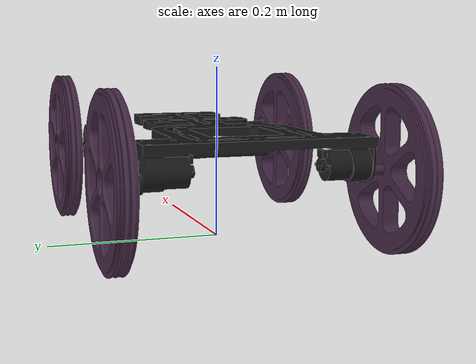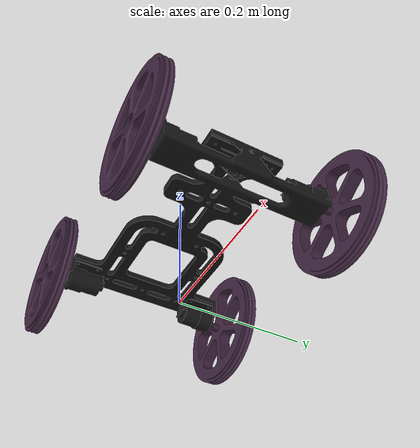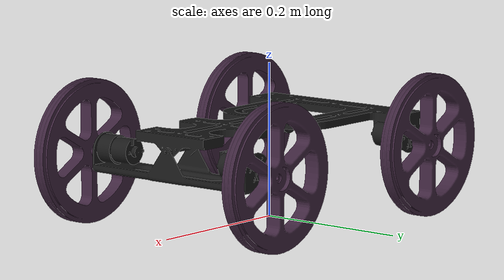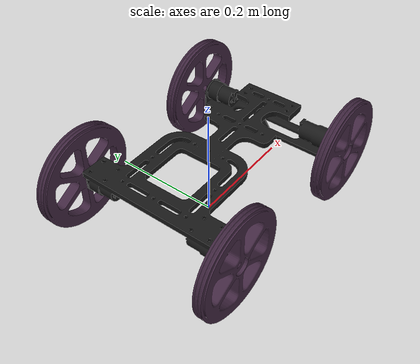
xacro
<?xml version="1.0"?>
<!-- Basic differential drive mobile base -->
<robot xmlns:xacro="http://www.ros.org/wiki/xacro" name="diffdrive_robot">
  <xacro:arg name="prefix" default="" />

  <xacro:include filename="$(find MRP_Hardware_Interface)/description/urdf/MRP_Body.xacro" />

  <!-- Import diffbot ros2_control description -->
  <xacro:include filename="$(find MRP_Hardware_Interface)/description/ros2_control/diffbot.ros2_control.xacro" />

  <xacro:diffbot_ros2_control
    name="DiffBot" prefix="$(arg prefix)"/>

</robot>

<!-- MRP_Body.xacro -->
<robot xmlns:xacro="http://www.ros.org/wiki/xacro">

    <!--                PROPERTIES                 -->
    <xacro:property name = 'a' value = '1'/>
    <xacro:property name = 'b' value = '4'/>
    <xacro:property name = 'd' value = '0.02'/>

    <material name = "black">
        <color rgba = "0.1 0.1 0.1 1"/>
    </material>

    <material name = "red">
        <color rgba = "1 0 0 1"/>
    </material>

    <material name = "purple">
        <color rgba = "0.25 0.15 0.25 1"/>
    </material>

    <!-- base link -->
    <link name = "base_link">
    </link>

    <!-- chassis to base link joint -->
    <joint name = 'base_link_to_chassis_joint' type = 'fixed'>
        <parent link = 'base_link'/>
        <child link = 'chassis_link'/>
        <origin xyz = '0 0 0.121'/>
    </joint>

    <!-- chassis link -->
    <link name = 'chassis_link'>
        <visual>
            <origin xyz = '0 0 0' rpy = '1.570796 0 0'/>
            <geometry>
                <mesh filename = "file://$(find MRP_Hardware_Interface)/description/meshes/entire_chassis.stl" scale = "0.001 0.001 0.001"/>
            </geometry>
            <material name = 'black'/>
        </visual>

        <collision>
            <origin xyz = '0.02125 0 -0.02' rpy = '1.570796 0 0'/>
            <geometry>
                <box size = '0.3605 0.06 0.288'/>
            </geometry>
        </collision>

        <inertial>
            <mass value = '1.0'/>
            <inertia
                ixx = '${a * 8.617577e-3}'
                ixy = '${a * 9.10052e-4}'
                ixz = '${a * 1e-8}'
                iyy = '${a * 0.030175621}'
                iyz = '${a * 1e-8}'
                izz = '${a * 0.022585289}'/>
        </inertial>
    </link>

    <!-- rear left wheel to chassis joint -->
    <joint name = 'rear_left_wheel_joint' type = 'continuous'>
        <parent link = 'chassis_link'/>
        <child link = 'rear_left_wheel'/>
        <origin xyz = '-0.1355 0.144 -0.0285' rpy = '-1.570796 0 0'/>
        <axis xyz = '0 0 1'/>
        <dynamics damping = '${d}' />
    </joint>

    <!-- rear left wheel -->
    <link name = 'rear_left_wheel'>
        <visual>
            <origin xyz = "0 0 0.012" rpy = "0 1.570796 0"/>
            <geometry>
                <mesh filename = "file://$(find MRP_Hardware_Interface)/description/meshes/wheel_coupler_assembly.stl" scale = "0.001 0.001 0.001"/>
            </geometry>
            <material name = 'purple'/>
        </visual>

        <collision>
            <origin xyz = "0 0 0.01" rpy = "0 0 0"/>
            <geometry>
                <sphere radius = '0.0925'/>
            </geometry>
        </collision>

        <inertial>
            <mass value = "0.15"/>
            <inertia
                ixx = "${b * 3.20634763e-4}"
                ixy = "${b * 1e-8}"
                ixz = "${b * 1e-8}"
                iyy = "${b * 3.20634763e-4}"
                iyz = "${b * 1e-8}"
                izz = "${b * 6.314298594e-4}"/>
        </inertial>
    </link>

    <!-- rear right wheel to chassis joint -->
    <joint name = 'rear_right_wheel_joint' type = 'continuous'>
        <parent link = 'chassis_link'/>
        <child link = 'rear_right_wheel'/>
        <origin xyz = '-0.1355 -0.144 -0.0285' rpy = '1.570796 0 0'/>
        <axis xyz = '0 0 -1'/>
        <dynamics damping = '${d}' />
    </joint>

    <!-- rear right wheel -->
    <link name = 'rear_right_wheel'>
        <visual>
            <origin xyz = "0 0 0.012" rpy = "0 1.570796 0"/>
            <geometry>
                <mesh filename = "file://$(find MRP_Hardware_Interface)/description/meshes/wheel_coupler_assembly.stl" scale = "0.001 0.001 0.001"/>
            </geometry>
            <material name = 'purple'/>
        </visual>

        <collision>
            <origin xyz = "0 0 0.01" rpy = "0 0 0"/>
            <geometry>
                <sphere radius = '0.0925'/>
            </geometry>
        </collision>

        <inertial>
            <mass value = "0.15"/>
            <inertia
                ixx = "${b * 3.20634763e-4}"
                ixy = "${b * 1e-8}"
                ixz = "${b * 1e-8}"
                iyy = "${b * 3.20634763e-4}"
                iyz = "${b * 1e-8}"
                izz = "${b * 6.314298594e-4}"/>
        </inertial>
    </link>

    <!-- front left wheel to chassis joint -->
    <joint name = 'front_left_wheel_joint' type = 'continuous'>
        <parent link = 'chassis_link'/>
        <child link = 'front_left_wheel'/>
        <origin xyz = '0.1755 0.144 -0.0285' rpy = '-1.570796 0 0'/>
        <axis xyz = '0 0 1'/>
        <dynamics damping = '${d}' />
    </joint>

    <!-- front left wheel -->
    <link name = 'front_left_wheel'>
        <visual>
            <origin xyz = "0 0 0.012" rpy = "0 1.570796 0"/>
            <geometry>
                <mesh filename = "file://$(find MRP_Hardware_Interface)/description/meshes/wheel_coupler_assembly.stl" scale = "0.001 0.001 0.001"/>
            </geometry>
            <material name = 'purple'/>
        </visual>

        <collision>
            <origin xyz = "0 0 0.01" rpy = "0 0 0"/>
            <geometry>
                <sphere radius = '0.0925'/>
            </geometry>
        </collision>

        <inertial>
            <mass value = "0.15"/>
            <inertia
                ixx = "${b * 3.20634763e-4}"
                ixy = "${b * 1e-8}"
                ixz = "${b * 1e-8}"
                iyy = "${b * 3.20634763e-4}"
                iyz = "${b * 1e-8}"
                izz = "${b * 6.314298594e-4}"/>
        </inertial>
    </link>

    <!-- front right wheel to chassis joint -->
    <joint name = 'front_right_wheel_joint' type = 'continuous'>
        <parent link = 'chassis_link'/>
        <child link = 'front_right_wheel'/>
        <origin xyz = '0.1755 -0.144 -0.0285' rpy = '1.570796 0 0'/>
        <axis xyz = '0 0 -1'/>
        <dynamics damping = '${d}' />
    </joint>

    <!-- front right wheel -->
    <link name = 'front_right_wheel'>
        <visual>
            <origin xyz = "0 0 0.012" rpy = "0 1.570796 0"/>
            <geometry>
                <mesh filename = "file://$(find MRP_Hardware_Interface)/description/meshes/wheel_coupler_assembly.stl" scale = "0.001 0.001 0.001"/>
            </geometry>
            <material name = 'purple'/>
        </visual>

        <collision>
            <origin xyz = "0 0 0.01" rpy = "0 0 0"/>
            <geometry>
                <sphere radius = '0.0925'/>
            </geometry>
        </collision>

        <inertial>
            <mass value = "0.15"/>
            <inertia
                ixx = "${b * 3.20634763e-4}"
                ixy = "${b * 1e-8}"
                ixz = "${b * 1e-8}"
                iyy = "${b * 3.20634763e-4}"
                iyz = "${b * 1e-8}"
                izz = "${b * 6.314298594e-4}"/>
        </inertial>
    </link>
</robot>
